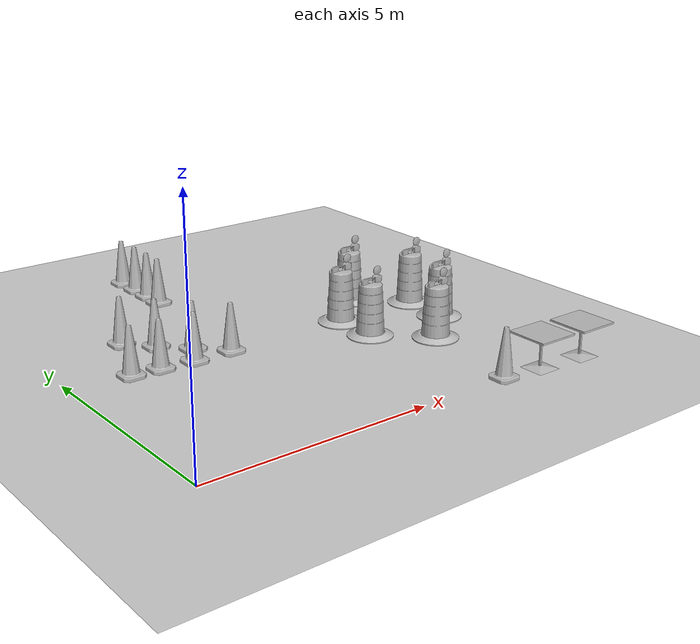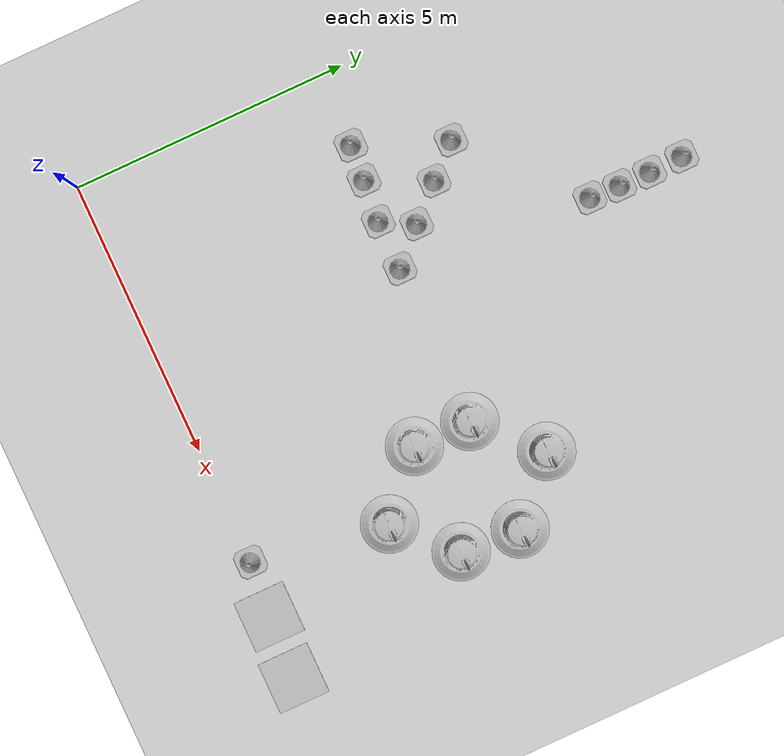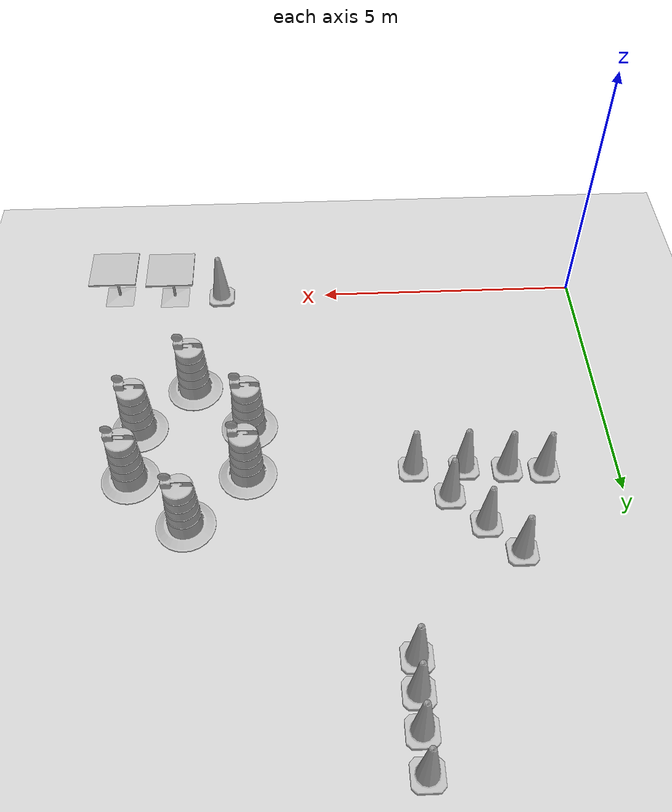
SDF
<sdf version="1.7">
 <world name="default">
  <light name="sun" type="directional">
   <pose>0 0 10 0 -0 0</pose>
   <diffuse>0.8 0.8 0.8 1</diffuse>
   <specular>0.2 0.2 0.2 1</specular>
   <attenuation>
    <range>1000</range>
    <constant>0.9</constant>
    <linear>0.01</linear>
    <quadratic>0.001</quadratic>
   </attenuation>
   <direction>-0.5 0.1 -0.9</direction>
   <spot><inner_angle>0</inner_angle><outer_angle>0</outer_angle><falloff>0</falloff></spot>
  </light>
  <model name="ground_plane">
   <static>1</static>
   <link name="link">
    <collision name="collision">
     <geometry><plane><normal>0 0 1</normal><size>100 100</size></plane></geometry>
     <surface>
      <contact><collide_bitmask>65535</collide_bitmask></contact>
      <friction><ode><mu>100</mu><mu2>50</mu2></ode></friction>
     </surface>
    </collision>
    <visual name="visual">
     <cast_shadows>0</cast_shadows>
     <geometry><plane><normal>0 0 1</normal><size>100 100</size></plane></geometry>
     <material>
      <script><uri>file://media/materials/scripts/gazebo.material</uri><name>Gazebo/Grey</name></script>
     </material>
    </visual>
   </link>
  </model>
  <gravity>0 0 -9.8</gravity>
  <magnetic_field>6e-06 2.3e-05 -4.2e-05</magnetic_field>
  <atmosphere type="adiabatic"/>
  <physics type="ode">
   <max_step_size>0.001</max_step_size>
   <real_time_factor>1</real_time_factor>
   <real_time_update_rate>1000</real_time_update_rate>
  </physics>
  <scene><ambient>0.4 0.4 0.4 1</ambient><background>0.7 0.7 0.7 1</background><shadows>1</shadows></scene>
  <audio><device>default</device></audio>
  <spherical_coordinates>
   <surface_model>EARTH_WGS84</surface_model>
   <latitude_deg>0</latitude_deg>
   <longitude_deg>0</longitude_deg>
   <elevation>0</elevation>
   <heading_deg>0</heading_deg>
  </spherical_coordinates>
  <model name="Construction Cone">
   <link name="link">
    <collision name="collision">
     <geometry>
      <mesh><scale>10 10 10</scale><uri>model://construction_cone/meshes/construction_cone.dae</uri></mesh>
     </geometry>
    </collision>
    <visual name="visual">
     <geometry>
      <mesh><scale>10 10 10</scale><uri>model://construction_cone/meshes/construction_cone.dae</uri></mesh>
     </geometry>
    </visual>
    <inertial>
     <inertia><ixx>1</ixx><ixy>0</ixy><ixz>0</ixz><iyy>1</iyy><iyz>0</iyz><izz>1</izz></inertia>
     <mass>1</mass>
    </inertial>
   </link>
   <pose>3.5968 4.45656 -0 0 -0 0</pose>
  </model>
  <model name="Construction Barrel">
   <link name="link">
    <inertial>
     <pose>0 0 0.4 0 -0 0</pose>
     <mass>500</mass>
     <inertia><ixx>51.2096</ixx><iyy>51.2096</iyy><izz>25</izz><ixy>0</ixy><ixz>0</ixz><iyz>0</iyz></inertia>
    </inertial>
    <collision name="collision">
     <geometry><mesh><uri>model://construction_barrel/meshes/construction_barrel.dae</uri></mesh></geometry>
    </collision>
    <visual name="visual">
     <geometry><mesh><uri>model://construction_barrel/meshes/construction_barrel.dae</uri></mesh></geometry>
    </visual>
   </link>
   <pose>6.47697 3.39821 0 0 0 -3.1e-05</pose>
  </model>
  <model name="Construction Barrel_0">
   <link name="link">
    <inertial>
     <pose>0 0 0.4 0 -0 0</pose>
     <mass>500</mass>
     <inertia><ixx>51.2096</ixx><iyy>51.2096</iyy><izz>25</izz><ixy>0</ixy><ixz>0</ixz><iyz>0</iyz></inertia>
    </inertial>
    <collision name="collision">
     <geometry><mesh><uri>model://construction_barrel/meshes/construction_barrel.dae</uri></mesh></geometry>
    </collision>
    <visual name="visual">
     <geometry><mesh><uri>model://construction_barrel/meshes/construction_barrel.dae</uri></mesh></geometry>
    </visual>
   </link>
   <pose>7.51091 2.44717 0 0 0 -3e-05</pose>
  </model>
  <model name="Construction Barrel_1">
   <link name="link">
    <inertial>
     <pose>0 0 0.4 0 -0 0</pose>
     <mass>500</mass>
     <inertia><ixx>51.2096</ixx><iyy>51.2096</iyy><izz>25</izz><ixy>0</ixy><ixz>0</ixz><iyz>0</iyz></inertia>
    </inertial>
    <collision name="collision">
     <geometry><mesh><uri>model://construction_barrel/meshes/construction_barrel.dae</uri></mesh></geometry>
    </collision>
    <visual name="visual">
     <geometry><mesh><uri>model://construction_barrel/meshes/construction_barrel.dae</uri></mesh></geometry>
    </visual>
   </link>
   <pose>6.48812 4.44383 0 0 0 -2.8e-05</pose>
  </model>
  <model name="Construction Cone_0">
   <link name="link">
    <collision name="collision">
     <geometry>
      <mesh><scale>10 10 10</scale><uri>model://construction_cone/meshes/construction_cone.dae</uri></mesh>
     </geometry>
    </collision>
    <visual name="visual">
     <geometry>
      <mesh><scale>10 10 10</scale><uri>model://construction_cone/meshes/construction_cone.dae</uri></mesh>
     </geometry>
    </visual>
    <inertial>
     <inertia><ixx>1</ixx><ixy>0</ixy><ixz>0</ixz><iyy>1</iyy><iyz>0</iyz><izz>1</izz></inertia>
     <mass>1</mass>
    </inertial>
   </link>
   <pose>2.70371 4.45757 -0 0 -0 0</pose>
  </model>
  <model name="Construction Cone_1">
   <link name="link">
    <collision name="collision">
     <geometry>
      <mesh><scale>10 10 10</scale><uri>model://construction_cone/meshes/construction_cone.dae</uri></mesh>
     </geometry>
    </collision>
    <visual name="visual">
     <geometry>
      <mesh><scale>10 10 10</scale><uri>model://construction_cone/meshes/construction_cone.dae</uri></mesh>
     </geometry>
    </visual>
    <inertial>
     <inertia><ixx>1</ixx><ixy>0</ixy><ixz>0</ixz><iyy>1</iyy><iyz>0</iyz><izz>1</izz></inertia>
     <mass>1</mass>
    </inertial>
   </link>
   <pose>1.9553 4.53094 -1e-05 0 -0 0</pose>
  </model>
  <model name="Construction Cone_2">
   <link name="link">
    <collision name="collision">
     <geometry>
      <mesh><scale>10 10 10</scale><uri>model://construction_cone/meshes/construction_cone.dae</uri></mesh>
     </geometry>
    </collision>
    <visual name="visual">
     <geometry>
      <mesh><scale>10 10 10</scale><uri>model://construction_cone/meshes/construction_cone.dae</uri></mesh>
     </geometry>
    </visual>
    <inertial>
     <inertia><ixx>1</ixx><ixy>0</ixy><ixz>0</ixz><iyy>1</iyy><iyz>0</iyz><izz>1</izz></inertia>
     <mass>1</mass>
    </inertial>
   </link>
   <pose>1.31376 4.57829 -0 0 -0 0</pose>
  </model>
  <model name="Construction Cone_3">
   <link name="link">
    <collision name="collision">
     <geometry>
      <mesh><scale>10 10 10</scale><uri>model://construction_cone/meshes/construction_cone.dae</uri></mesh>
     </geometry>
    </collision>
    <visual name="visual">
     <geometry>
      <mesh><scale>10 10 10</scale><uri>model://construction_cone/meshes/construction_cone.dae</uri></mesh>
     </geometry>
    </visual>
    <inertial>
     <inertia><ixx>1</ixx><ixy>0</ixy><ixz>0</ixz><iyy>1</iyy><iyz>0</iyz><izz>1</izz></inertia>
     <mass>1</mass>
    </inertial>
   </link>
   <pose>3.01789 5.04013 -0 0 -0 0</pose>
  </model>
  <model name="Construction Cone_4">
   <link name="link">
    <collision name="collision">
     <geometry>
      <mesh><scale>10 10 10</scale><uri>model://construction_cone/meshes/construction_cone.dae</uri></mesh>
     </geometry>
    </collision>
    <visual name="visual">
     <geometry>
      <mesh><scale>10 10 10</scale><uri>model://construction_cone/meshes/construction_cone.dae</uri></mesh>
     </geometry>
    </visual>
    <inertial>
     <inertia><ixx>1</ixx><ixy>0</ixy><ixz>0</ixz><iyy>1</iyy><iyz>0</iyz><izz>1</izz></inertia>
     <mass>1</mass>
    </inertial>
   </link>
   <pose>2.46903 5.62227 0 -0 -0 -0</pose>
  </model>
  <model name="Construction Cone_5">
   <link name="link">
    <collision name="collision">
     <geometry>
      <mesh><scale>10 10 10</scale><uri>model://construction_cone/meshes/construction_cone.dae</uri></mesh>
     </geometry>
    </collision>
    <visual name="visual">
     <geometry>
      <mesh><scale>10 10 10</scale><uri>model://construction_cone/meshes/construction_cone.dae</uri></mesh>
     </geometry>
    </visual>
    <inertial>
     <inertia><ixx>1</ixx><ixy>0</ixy><ixz>0</ixz><iyy>1</iyy><iyz>0</iyz><izz>1</izz></inertia>
     <mass>1</mass>
    </inertial>
   </link>
   <pose>1.9557 6.18243 -0 1e-06 -0 0</pose>
  </model>
  <model name="Construction Cone_6">
   <link name="link">
    <collision name="collision">
     <geometry>
      <mesh><scale>10 10 10</scale><uri>model://construction_cone/meshes/construction_cone.dae</uri></mesh>
     </geometry>
    </collision>
    <visual name="visual">
     <geometry>
      <mesh><scale>10 10 10</scale><uri>model://construction_cone/meshes/construction_cone.dae</uri></mesh>
     </geometry>
    </visual>
    <inertial>
     <inertia><ixx>1</ixx><ixy>0</ixy><ixz>0</ixz><iyy>1</iyy><iyz>0</iyz><izz>1</izz></inertia>
     <mass>1</mass>
    </inertial>
   </link>
   <pose>7.1033 0.002639 0 -0 -0 -0</pose>
  </model>
  <model name="Construction Cone_7">
   <link name="link">
    <collision name="collision">
     <geometry>
      <mesh><scale>10 10 10</scale><uri>model://construction_cone/meshes/construction_cone.dae</uri></mesh>
     </geometry>
    </collision>
    <visual name="visual">
     <geometry>
      <mesh><scale>10 10 10</scale><uri>model://construction_cone/meshes/construction_cone.dae</uri></mesh>
     </geometry>
    </visual>
    <inertial>
     <inertia><ixx>1</ixx><ixy>0</ixy><ixz>0</ixz><iyy>1</iyy><iyz>0</iyz><izz>1</izz></inertia>
     <mass>1</mass>
    </inertial>
   </link>
   <pose>3.86125 7.93676 -0 0 -1e-06 0</pose>
  </model>
  <model name="Construction Cone_8">
   <link name="link">
    <collision name="collision">
     <geometry>
      <mesh><scale>10 10 10</scale><uri>model://construction_cone/meshes/construction_cone.dae</uri></mesh>
     </geometry>
    </collision>
    <visual name="visual">
     <geometry>
      <mesh><scale>10 10 10</scale><uri>model://construction_cone/meshes/construction_cone.dae</uri></mesh>
     </geometry>
    </visual>
    <inertial>
     <inertia><ixx>1</ixx><ixy>0</ixy><ixz>0</ixz><iyy>1</iyy><iyz>0</iyz><izz>1</izz></inertia>
     <mass>1</mass>
    </inertial>
   </link>
   <pose>3.88574 8.48659 -0 0 -0 0</pose>
  </model>
  <model name="Construction Cone_9">
   <link name="link">
    <collision name="collision">
     <geometry>
      <mesh><scale>10 10 10</scale><uri>model://construction_cone/meshes/construction_cone.dae</uri></mesh>
     </geometry>
    </collision>
    <visual name="visual">
     <geometry>
      <mesh><scale>10 10 10</scale><uri>model://construction_cone/meshes/construction_cone.dae</uri></mesh>
     </geometry>
    </visual>
    <inertial>
     <inertia><ixx>1</ixx><ixy>0</ixy><ixz>0</ixz><iyy>1</iyy><iyz>0</iyz><izz>1</izz></inertia>
     <mass>1</mass>
    </inertial>
   </link>
   <pose>3.8896 9.05711 -0 0 -0 0</pose>
  </model>
  <model name="Construction Cone_10">
   <link name="link">
    <collision name="collision">
     <geometry>
      <mesh><scale>10 10 10</scale><uri>model://construction_cone/meshes/construction_cone.dae</uri></mesh>
     </geometry>
    </collision>
    <visual name="visual">
     <geometry>
      <mesh><scale>10 10 10</scale><uri>model://construction_cone/meshes/construction_cone.dae</uri></mesh>
     </geometry>
    </visual>
    <inertial>
     <inertia><ixx>1</ixx><ixy>0</ixy><ixz>0</ixz><iyy>1</iyy><iyz>0</iyz><izz>1</izz></inertia>
     <mass>1</mass>
    </inertial>
   </link>
   <pose>3.87548 9.67091 -0 0 -0 0</pose>
  </model>
  <model name="Construction Barrel_2">
   <link name="link">
    <inertial>
     <pose>0 0 0.4 0 -0 0</pose>
     <mass>500</mass>
     <inertia><ixx>51.2096</ixx><iyy>51.2096</iyy><izz>25</izz><ixy>0</ixy><ixz>0</ixz><iyz>0</iyz></inertia>
    </inertial>
    <collision name="collision">
     <geometry><mesh><uri>model://construction_barrel/meshes/construction_barrel.dae</uri></mesh></geometry>
    </collision>
    <visual name="visual">
     <geometry><mesh><uri>model://construction_barrel/meshes/construction_barrel.dae</uri></mesh></geometry>
    </visual>
   </link>
   <pose>7.50964 5.4302 -2e-06 1e-06 8e-06 -1e-05</pose>
  </model>
  <model name="Construction Barrel_3">
   <link name="link">
    <inertial>
     <pose>0 0 0.4 0 -0 0</pose>
     <mass>500</mass>
     <inertia><ixx>51.2096</ixx><iyy>51.2096</iyy><izz>25</izz><ixy>0</ixy><ixz>0</ixz><iyz>0</iyz></inertia>
    </inertial>
    <collision name="collision">
     <geometry><mesh><uri>model://construction_barrel/meshes/construction_barrel.dae</uri></mesh></geometry>
    </collision>
    <visual name="visual">
     <geometry><mesh><uri>model://construction_barrel/meshes/construction_barrel.dae</uri></mesh></geometry>
    </visual>
   </link>
   <pose>8.46169 3.36652 -2e-06 4e-06 7e-06 -9e-06</pose>
  </model>
  <model name="Construction Barrel_4">
   <link name="link">
    <inertial>
     <pose>0 0 0.4 0 -0 0</pose>
     <mass>500</mass>
     <inertia><ixx>51.2096</ixx><iyy>51.2096</iyy><izz>25</izz><ixy>0</ixy><ixz>0</ixz><iyz>0</iyz></inertia>
    </inertial>
    <collision name="collision">
     <geometry><mesh><uri>model://construction_barrel/meshes/construction_barrel.dae</uri></mesh></geometry>
    </collision>
    <visual name="visual">
     <geometry><mesh><uri>model://construction_barrel/meshes/construction_barrel.dae</uri></mesh></geometry>
    </visual>
   </link>
   <pose>8.53064 4.45564 -3e-06 6e-06 1.1e-05 -8e-06</pose>
  </model>
  <model name="cafe_table">
   <static>1</static>
   <link name="link">
    <collision name="surface">
     <pose>0 0 0.755 0 -0 0</pose>
     <geometry><box><size>0.913 0.913 0.04</size></box></geometry>
    </collision>
    <collision name="column">
     <pose>0 0 0.37 0 -0 0</pose>
     <geometry><box><size>0.042 0.042 0.74</size></box></geometry>
    </collision>
    <collision name="base">
     <pose>0 0 0.02 0 -0 0</pose>
     <geometry><box><size>0.56 0.56 0.04</size></box></geometry>
    </collision>
    <visual name="visual">
     <geometry><mesh><uri>model://cafe_table/meshes/cafe_table.dae</uri></mesh></geometry>
    </visual>
   </link>
   <pose>8.06142 -0.063657 0 0 -0 0</pose>
  </model>
  <model name="cafe_table_0">
   <static>1</static>
   <link name="link">
    <collision name="surface">
     <pose>0 0 0.755 0 -0 0</pose>
     <geometry><box><size>0.913 0.913 0.04</size></box></geometry>
    </collision>
    <collision name="column">
     <pose>0 0 0.37 0 -0 0</pose>
     <geometry><box><size>0.042 0.042 0.74</size></box></geometry>
    </collision>
    <collision name="base">
     <pose>0 0 0.02 0 -0 0</pose>
     <geometry><box><size>0.56 0.56 0.04</size></box></geometry>
    </collision>
    <visual name="visual">
     <geometry><mesh><uri>model://cafe_table/meshes/cafe_table.dae</uri></mesh></geometry>
    </visual>
   </link>
   <pose>9.18288 -0.124832 0 0 -0 0</pose>
  </model>
 </world>
</sdf>
